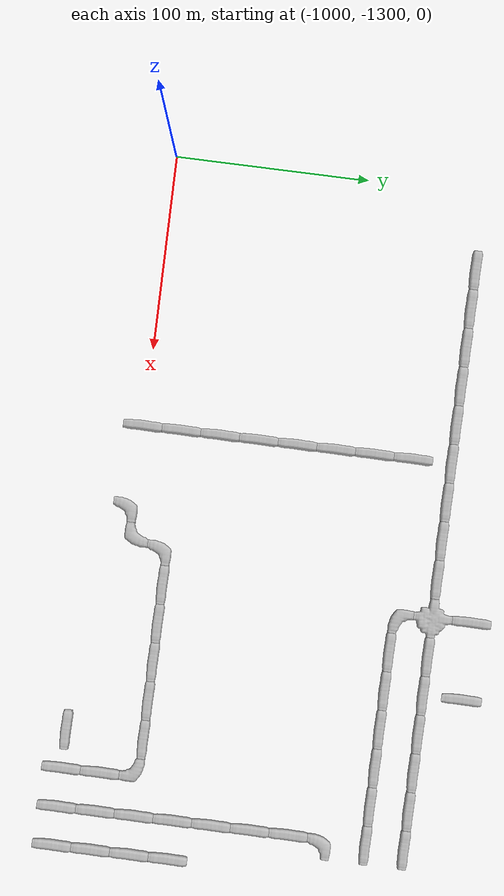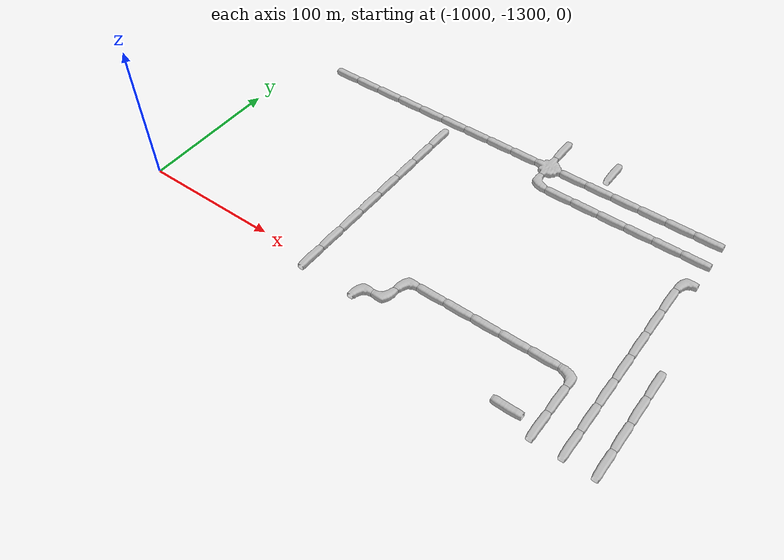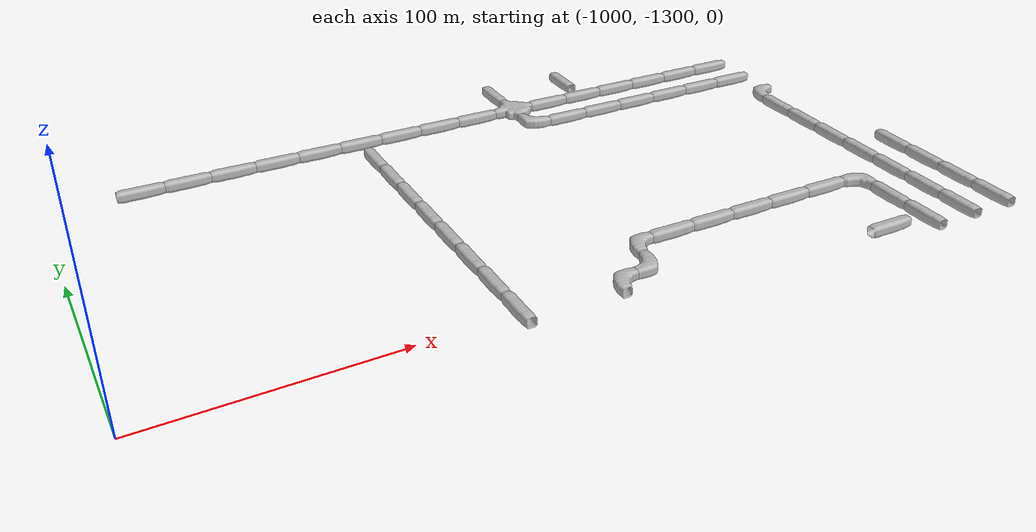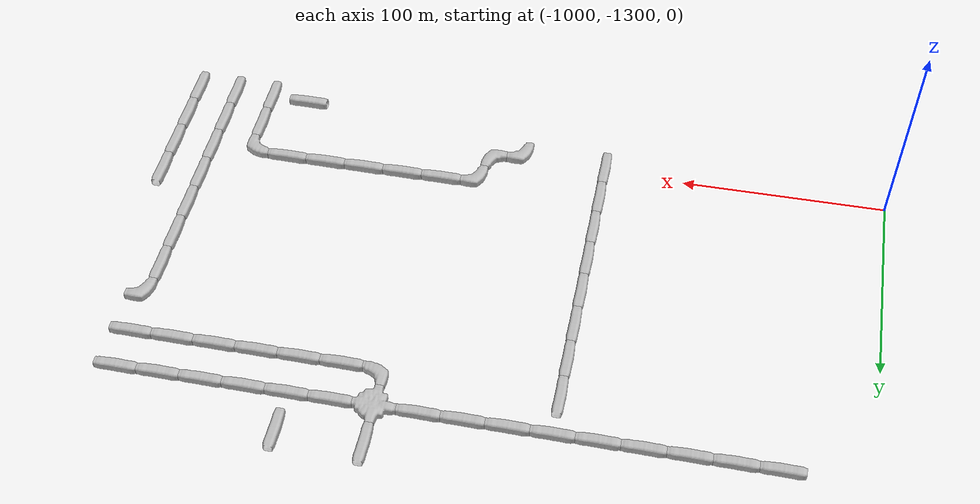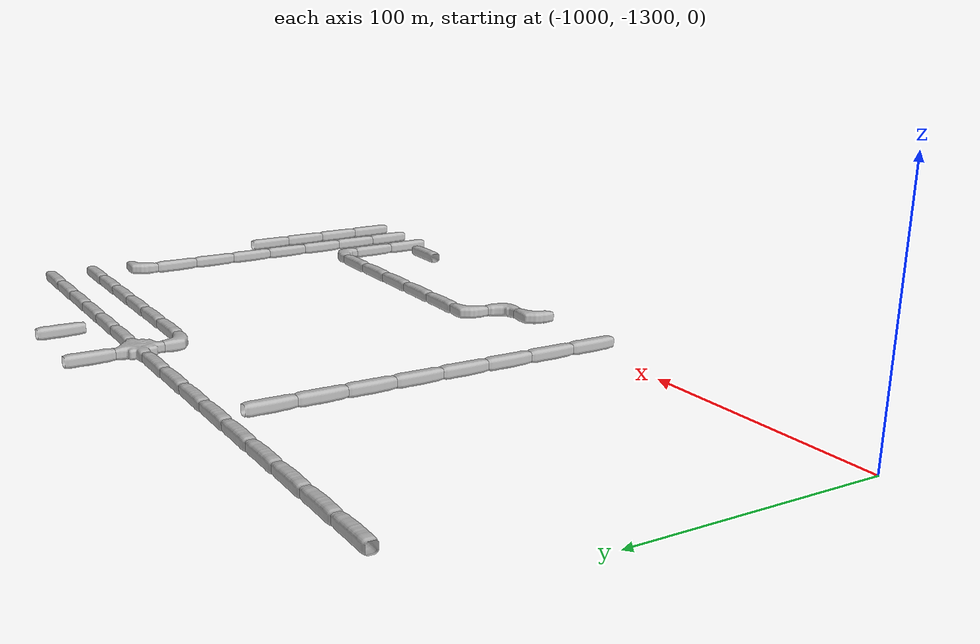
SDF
<sdf version="1.6">
 <world name="cave_32000_0">
  <include>
   <static>true</static>
   <name>cave_-33_-57</name>
   <pose>-660 -1140 0 0 0 1.5707963267948966</pose>
   <uri>model://cave_straight_20m</uri>
  </include>
  <include>
   <static>true</static>
   <name>cave_-34_-57</name>
   <pose>-680 -1140 0 0 0 1.5707963267948966</pose>
   <uri>model://cave_straight_20m</uri>
  </include>
  <include>
   <static>true</static>
   <name>cave_-35_-57</name>
   <pose>-700 -1140 0 0 0 1.5707963267948966</pose>
   <uri>model://cave_straight_20m</uri>
  </include>
  <include>
   <static>true</static>
   <name>cave_-36_-57</name>
   <pose>-720 -1140 0 0 0 1.5707963267948966</pose>
   <uri>model://cave_straight_20m</uri>
  </include>
  <include>
   <static>true</static>
   <name>cave_-37_-57</name>
   <pose>-740 -1140 0 0 0 1.5707963267948966</pose>
   <uri>model://cave_straight_20m</uri>
  </include>
  <include>
   <static>true</static>
   <name>cave_-38_-57</name>
   <pose>-760 -1140 0 0 0 1.5707963267948966</pose>
   <uri>model://cave_straight_20m</uri>
  </include>
  <include>
   <static>true</static>
   <name>cave_-39_-57</name>
   <pose>-780 -1140 0 0 0 -1.5707963267948966</pose>
   <uri>model://cave_4way_20m</uri>
  </include>
  <include>
   <static>true</static>
   <name>cave_-39_-58</name>
   <pose>-780 -1160 0 0 0 0.0</pose>
   <uri>model://cave_L_20m</uri>
  </include>
  <include>
   <static>true</static>
   <name>cave_-38_-58</name>
   <pose>-760 -1160 0 0 0 1.5707963267948966</pose>
   <uri>model://cave_straight_20m</uri>
  </include>
  <include>
   <static>true</static>
   <name>cave_-37_-58</name>
   <pose>-740 -1160 0 0 0 1.5707963267948966</pose>
   <uri>model://cave_straight_20m</uri>
  </include>
  <include>
   <static>true</static>
   <name>cave_-36_-58</name>
   <pose>-720 -1160 0 0 0 1.5707963267948966</pose>
   <uri>model://cave_straight_20m</uri>
  </include>
  <include>
   <static>true</static>
   <name>cave_-35_-58</name>
   <pose>-700 -1160 0 0 0 1.5707963267948966</pose>
   <uri>model://cave_straight_20m</uri>
  </include>
  <include>
   <static>true</static>
   <name>cave_-34_-58</name>
   <pose>-680 -1160 0 0 0 1.5707963267948966</pose>
   <uri>model://cave_straight_20m</uri>
  </include>
  <include>
   <static>true</static>
   <name>cave_-33_-58</name>
   <pose>-660 -1160 0 0 0 1.5707963267948966</pose>
   <uri>model://cave_straight_20m</uri>
  </include>
  <include>
   <static>true</static>
   <name>cave_-33_-59</name>
   <pose>-660 -1180 0 0 0 -1.5707963267948966</pose>
   <uri>model://cave_L_20m</uri>
  </include>
  <include>
   <static>true</static>
   <name>cave_-33_-60</name>
   <pose>-660 -1200 0 0 0 0.0</pose>
   <uri>model://cave_straight_20m</uri>
  </include>
  <include>
   <static>true</static>
   <name>cave_-33_-61</name>
   <pose>-660 -1220 0 0 0 0.0</pose>
   <uri>model://cave_straight_20m</uri>
  </include>
  <include>
   <static>true</static>
   <name>cave_-33_-62</name>
   <pose>-660 -1240 0 0 0 0.0</pose>
   <uri>model://cave_straight_20m</uri>
  </include>
  <include>
   <static>true</static>
   <name>cave_-33_-63</name>
   <pose>-660 -1260 0 0 0 0.0</pose>
   <uri>model://cave_straight_20m</uri>
  </include>
  <include>
   <static>true</static>
   <name>cave_-33_-64</name>
   <pose>-660 -1280 0 0 0 0.0</pose>
   <uri>model://cave_straight_20m</uri>
  </include>
  <include>
   <static>true</static>
   <name>cave_-33_-65</name>
   <pose>-660 -1300 0 0 0 0.0</pose>
   <uri>model://cave_straight_20m</uri>
  </include>
  <include>
   <static>true</static>
   <name>cave_-33_-66</name>
   <pose>-660 -1320 0 0 0 0.0</pose>
   <uri>model://cave_straight_20m</uri>
  </include>
  <include>
   <static>true</static>
   <name>cave_-32_-66</name>
   <pose>-640 -1320 0 0 0 0.0</pose>
   <uri>model://cave_straight_20m</uri>
  </include>
  <include>
   <static>true</static>
   <name>cave_-32_-65</name>
   <pose>-640 -1300 0 0 0 0.0</pose>
   <uri>model://cave_straight_20m</uri>
  </include>
  <include>
   <static>true</static>
   <name>cave_-32_-64</name>
   <pose>-640 -1280 0 0 0 0.0</pose>
   <uri>model://cave_straight_20m</uri>
  </include>
  <include>
   <static>true</static>
   <name>cave_-32_-63</name>
   <pose>-640 -1260 0 0 0 0.0</pose>
   <uri>model://cave_straight_20m</uri>
  </include>
  <include>
   <static>true</static>
   <name>cave_-34_-66</name>
   <pose>-680 -1320 0 0 0 0.0</pose>
   <uri>model://cave_straight_20m</uri>
  </include>
  <include>
   <static>true</static>
   <name>cave_-34_-65</name>
   <pose>-680 -1300 0 0 0 0.0</pose>
   <uri>model://cave_straight_20m</uri>
  </include>
  <include>
   <static>true</static>
   <name>cave_-34_-64</name>
   <pose>-680 -1280 0 0 0 3.141592653589793</pose>
   <uri>model://cave_L_20m</uri>
  </include>
  <include>
   <static>true</static>
   <name>cave_-35_-64</name>
   <pose>-700 -1280 0 0 0 1.5707963267948966</pose>
   <uri>model://cave_straight_20m</uri>
  </include>
  <include>
   <static>true</static>
   <name>cave_-36_-64</name>
   <pose>-720 -1280 0 0 0 1.5707963267948966</pose>
   <uri>model://cave_straight_20m</uri>
  </include>
  <include>
   <static>true</static>
   <name>cave_-37_-64</name>
   <pose>-740 -1280 0 0 0 1.5707963267948966</pose>
   <uri>model://cave_straight_20m</uri>
  </include>
  <include>
   <static>true</static>
   <name>cave_-38_-64</name>
   <pose>-760 -1280 0 0 0 1.5707963267948966</pose>
   <uri>model://cave_straight_20m</uri>
  </include>
  <include>
   <static>true</static>
   <name>cave_-39_-64</name>
   <pose>-780 -1280 0 0 0 1.5707963267948966</pose>
   <uri>model://cave_straight_20m</uri>
  </include>
  <include>
   <static>true</static>
   <name>cave_-40_-64</name>
   <pose>-800 -1280 0 0 0 -1.5707963267948966</pose>
   <uri>model://cave_L_20m</uri>
  </include>
  <include>
   <static>true</static>
   <name>cave_-40_-65</name>
   <pose>-800 -1300 0 0 0 1.5707963267948966</pose>
   <uri>model://cave_L_20m</uri>
  </include>
  <include>
   <static>true</static>
   <name>cave_-41_-65</name>
   <pose>-820 -1300 0 0 0 -1.5707963267948966</pose>
   <uri>model://cave_L_20m</uri>
  </include>
  <include>
   <static>true</static>
   <name>cave_-35_-66</name>
   <pose>-700 -1320 0 0 0 1.5707963267948966</pose>
   <uri>model://cave_straight_20m</uri>
  </include>
  <include>
   <static>true</static>
   <name>cave_-43_-65</name>
   <pose>-860 -1300 0 0 0 0.0</pose>
   <uri>model://cave_straight_20m</uri>
  </include>
  <include>
   <static>true</static>
   <name>cave_-43_-64</name>
   <pose>-860 -1280 0 0 0 0.0</pose>
   <uri>model://cave_straight_20m</uri>
  </include>
  <include>
   <static>true</static>
   <name>cave_-43_-63</name>
   <pose>-860 -1260 0 0 0 0.0</pose>
   <uri>model://cave_straight_20m</uri>
  </include>
  <include>
   <static>true</static>
   <name>cave_-43_-62</name>
   <pose>-860 -1240 0 0 0 0.0</pose>
   <uri>model://cave_straight_20m</uri>
  </include>
  <include>
   <static>true</static>
   <name>cave_-43_-61</name>
   <pose>-860 -1220 0 0 0 0.0</pose>
   <uri>model://cave_straight_20m</uri>
  </include>
  <include>
   <static>true</static>
   <name>cave_-43_-60</name>
   <pose>-860 -1200 0 0 0 0.0</pose>
   <uri>model://cave_straight_20m</uri>
  </include>
  <include>
   <static>true</static>
   <name>cave_-43_-59</name>
   <pose>-860 -1180 0 0 0 0.0</pose>
   <uri>model://cave_straight_20m</uri>
  </include>
  <include>
   <static>true</static>
   <name>cave_-43_-58</name>
   <pose>-860 -1160 0 0 0 0.0</pose>
   <uri>model://cave_straight_20m</uri>
  </include>
  <include>
   <static>true</static>
   <name>cave_-40_-57</name>
   <pose>-800 -1140 0 0 0 1.5707963267948966</pose>
   <uri>model://cave_straight_20m</uri>
  </include>
  <include>
   <static>true</static>
   <name>cave_-41_-57</name>
   <pose>-820 -1140 0 0 0 1.5707963267948966</pose>
   <uri>model://cave_straight_20m</uri>
  </include>
  <include>
   <static>true</static>
   <name>cave_-42_-57</name>
   <pose>-840 -1140 0 0 0 1.5707963267948966</pose>
   <uri>model://cave_straight_20m</uri>
  </include>
  <include>
   <static>true</static>
   <name>cave_-43_-57</name>
   <pose>-860 -1140 0 0 0 1.5707963267948966</pose>
   <uri>model://cave_straight_20m</uri>
  </include>
  <include>
   <static>true</static>
   <name>cave_-44_-57</name>
   <pose>-880 -1140 0 0 0 1.5707963267948966</pose>
   <uri>model://cave_straight_20m</uri>
  </include>
  <include>
   <static>true</static>
   <name>cave_-45_-57</name>
   <pose>-900 -1140 0 0 0 1.5707963267948966</pose>
   <uri>model://cave_straight_20m</uri>
  </include>
  <include>
   <static>true</static>
   <name>cave_-46_-57</name>
   <pose>-920 -1140 0 0 0 1.5707963267948966</pose>
   <uri>model://cave_straight_20m</uri>
  </include>
  <include>
   <static>true</static>
   <name>cave_-47_-57</name>
   <pose>-940 -1140 0 0 0 1.5707963267948966</pose>
   <uri>model://cave_straight_20m</uri>
  </include>
  <include>
   <static>true</static>
   <name>cave_-48_-57</name>
   <pose>-960 -1140 0 0 0 1.5707963267948966</pose>
   <uri>model://cave_straight_20m</uri>
  </include>
  <include>
   <static>true</static>
   <name>cave_-39_-56</name>
   <pose>-780 -1120 0 0 0 0.0</pose>
   <uri>model://cave_straight_20m</uri>
  </include>
  <include>
   <static>true</static>
   <name>cave_-37_-56</name>
   <pose>-740 -1120 0 0 0 0.0</pose>
   <uri>model://cave_straight_20m</uri>
  </include>
 </world>
</sdf>
